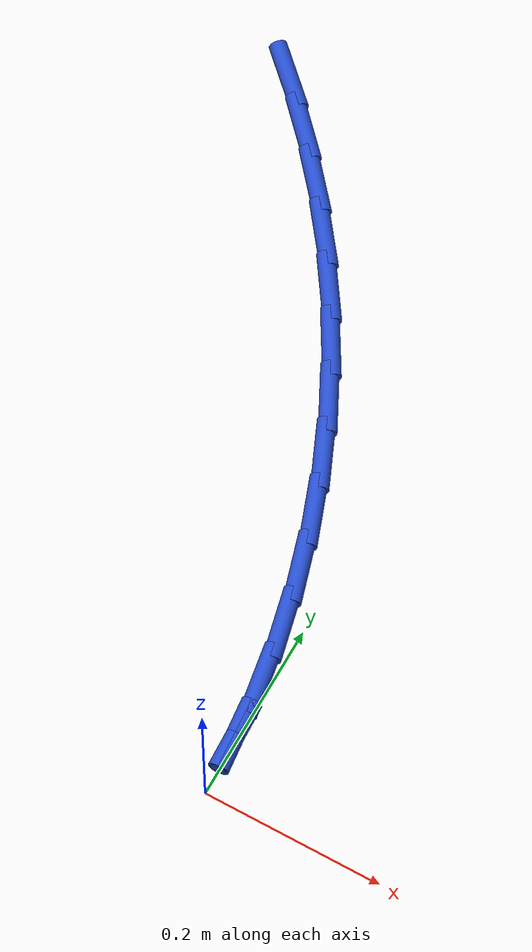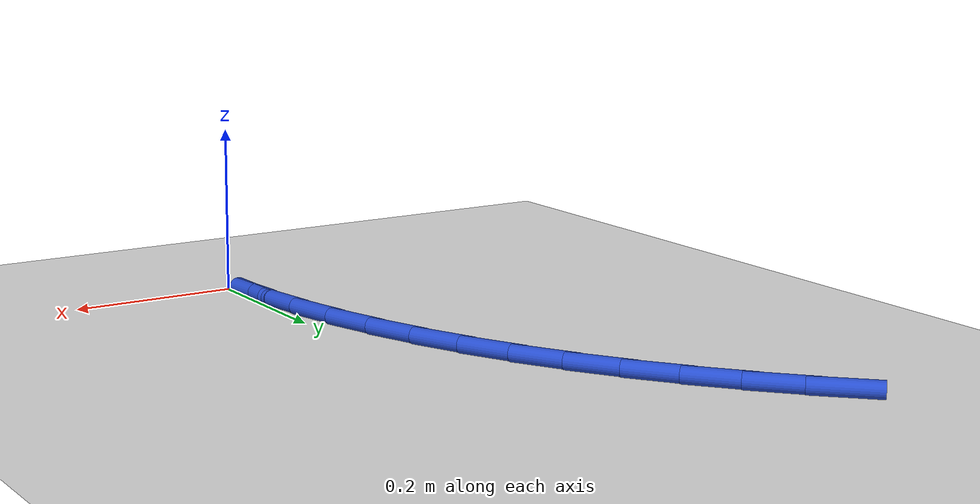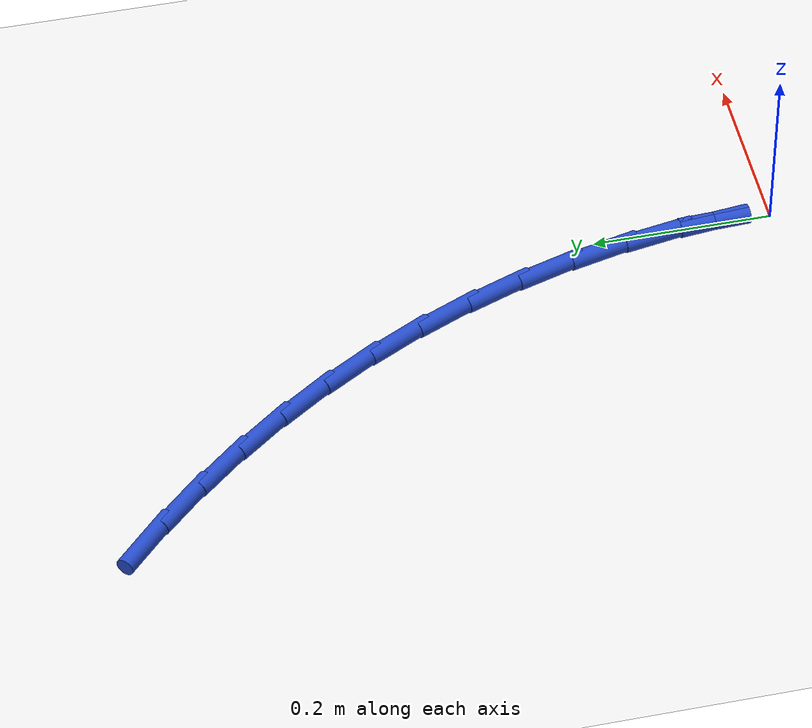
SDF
<sdf version="1.6">
 <world name="default">
  <model name="ground_plane">
   <static>1</static>
   <link name="link">
    <collision name="collision">
     <geometry><plane><normal>0 0 1</normal><size>100 100</size></plane></geometry>
     <surface><friction><ode><mu>100</mu><mu2>50</mu2></ode></friction></surface>
    </collision>
    <visual name="visual">
     <cast_shadows>0</cast_shadows>
     <geometry><plane><normal>0 0 1</normal><size>100 100</size></plane></geometry>
     <material>
      <script><uri>file://media/materials/scripts/gazebo.material</uri><name>Gazebo/WhiteGlow</name></script>
     </material>
    </visual>
   </link>
  </model>
  <model name="line">
   <link name="link_1">
    <pose>-0.0026729923848150955 0.06528703037406168 0.01 0 1.57 -1.464377785418233</pose>
    <collision name="collision">
     <geometry><cylinder><radius>0.01</radius><length>0.08</length></cylinder></geometry>
    </collision>
    <visual name="visual">
     <material>
      <script><name>Gazebo/Blue</name><uri>file://media/materials/scripts/gazebo.material</uri></script>
     </material>
     <geometry><cylinder><radius>0.01</radius><length>0.08</length></cylinder></geometry>
    </visual>
   </link>
   <link name="link_2">
    <pose>-0.009592291558886511 0.13006107449838636 0.01 0 1.57 -1.4003504104838451</pose>
    <collision name="collision">
     <geometry><cylinder><radius>0.01</radius><length>0.08</length></cylinder></geometry>
    </collision>
    <visual name="visual">
     <material>
      <script><name>Gazebo/Blue</name><uri>file://media/materials/scripts/gazebo.material</uri></script>
     </material>
     <geometry><cylinder><radius>0.01</radius><length>0.08</length></cylinder></geometry>
    </visual>
   </link>
   <link name="link_3">
    <pose>-0.020614244890213494 0.19409904249288296 0.01 0 1.57 -1.3376204371227727</pose>
    <collision name="collision">
     <geometry><cylinder><radius>0.01</radius><length>0.08</length></cylinder></geometry>
    </collision>
    <visual name="visual">
     <material>
      <script><name>Gazebo/Blue</name><uri>file://media/materials/scripts/gazebo.material</uri></script>
     </material>
     <geometry><cylinder><radius>0.01</radius><length>0.08</length></cylinder></geometry>
    </visual>
   </link>
   <link name="link_4">
    <pose>-0.03559519974679538 0.2571778444774607 0.01 0 1.57 -1.2759733134528393</pose>
    <collision name="collision">
     <geometry><cylinder><radius>0.01</radius><length>0.08</length></cylinder></geometry>
    </collision>
    <visual name="visual">
     <material>
      <script><name>Gazebo/Blue</name><uri>file://media/materials/scripts/gazebo.material</uri></script>
     </material>
     <geometry><cylinder><radius>0.01</radius><length>0.08</length></cylinder></geometry>
    </visual>
   </link>
   <link name="link_5">
    <pose>-0.05439150349663151 0.31907439057202863 0.01 0 1.57 -1.2151627684335091</pose>
    <collision name="collision">
     <geometry><cylinder><radius>0.01</radius><length>0.08</length></cylinder></geometry>
    </collision>
    <visual name="visual">
     <material>
      <script><name>Gazebo/Blue</name><uri>file://media/materials/scripts/gazebo.material</uri></script>
     </material>
     <geometry><cylinder><radius>0.01</radius><length>0.08</length></cylinder></geometry>
    </visual>
   </link>
   <link name="link_6">
    <pose>-0.07685950350772108 0.3795655908964955 0.01 0 1.57 -1.1549178203636168</pose>
    <collision name="collision">
     <geometry><cylinder><radius>0.01</radius><length>0.08</length></cylinder></geometry>
    </collision>
    <visual name="visual">
     <material>
      <script><name>Gazebo/Blue</name><uri>file://media/materials/scripts/gazebo.material</uri></script>
     </material>
     <geometry><cylinder><radius>0.01</radius><length>0.08</length></cylinder></geometry>
    </visual>
   </link>
   <link name="link_7">
    <pose>-0.10285554714806347 0.4384283555707706 0.01 0 1.57 -1.0949485240399865</pose>
    <collision name="collision">
     <geometry><cylinder><radius>0.01</radius><length>0.08</length></cylinder></geometry>
    </collision>
    <visual name="visual">
     <material>
      <script><name>Gazebo/Blue</name><uri>file://media/materials/scripts/gazebo.material</uri></script>
     </material>
     <geometry><cylinder><radius>0.01</radius><length>0.08</length></cylinder></geometry>
    </visual>
   </link>
   <link name="link_8">
    <pose>-0.132235981785658 0.4954395947147632 0.01 0 1.57 -1.0349535537171897</pose>
    <collision name="collision">
     <geometry><cylinder><radius>0.01</radius><length>0.08</length></cylinder></geometry>
    </collision>
    <visual name="visual">
     <material>
      <script><name>Gazebo/Blue</name><uri>file://media/materials/scripts/gazebo.material</uri></script>
     </material>
     <geometry><cylinder><radius>0.01</radius><length>0.08</length></cylinder></geometry>
    </visual>
   </link>
   <link name="link_9">
    <pose>-0.16485711500180156 0.5503765041496294 0.01 0 1.57 -0.9754605038029999</pose>
    <collision name="collision">
     <geometry><cylinder><radius>0.01</radius><length>0.08</length></cylinder></geometry>
    </collision>
    <visual name="visual">
     <material>
      <script><name>Gazebo/Blue</name><uri>file://media/materials/scripts/gazebo.material</uri></script>
     </material>
     <geometry><cylinder><radius>0.01</radius><length>0.08</length></cylinder></geometry>
    </visual>
   </link>
   <link name="link_10">
    <pose>-0.2005642333908754 0.6030954194472974 0.01 0 1.57 -0.9184351753830534</pose>
    <collision name="collision">
     <geometry><cylinder><radius>0.01</radius><length>0.08</length></cylinder></geometry>
    </collision>
    <visual name="visual">
     <material>
      <script><name>Gazebo/Blue</name><uri>file://media/materials/scripts/gazebo.material</uri></script>
     </material>
     <geometry><cylinder><radius>0.01</radius><length>0.08</length></cylinder></geometry>
    </visual>
   </link>
   <link name="link_11">
    <pose>-0.23917662340041382 0.65363937861907 0.01 0 1.57 -0.8643866570656559</pose>
    <collision name="collision">
     <geometry><cylinder><radius>0.01</radius><length>0.08</length></cylinder></geometry>
    </collision>
    <visual name="visual">
     <material>
      <script><name>Gazebo/Blue</name><uri>file://media/materials/scripts/gazebo.material</uri></script>
     </material>
     <geometry><cylinder><radius>0.01</radius><length>0.08</length></cylinder></geometry>
    </visual>
   </link>
   <link name="link_12">
    <pose>-0.2805098238992504 0.7020783303736908 0.01 0 1.57 -0.8134648639158817</pose>
    <collision name="collision">
     <geometry><cylinder><radius>0.01</radius><length>0.08</length></cylinder></geometry>
    </collision>
    <visual name="visual">
     <material>
      <script><name>Gazebo/Blue</name><uri>file://media/materials/scripts/gazebo.material</uri></script>
     </material>
     <geometry><cylinder><radius>0.01</radius><length>0.08</length></cylinder></geometry>
    </visual>
   </link>
   <link name="link_13">
    <pose>-0.3243793737562187 0.7484822234199036 0.01 0 1.57 -0.7657376626521363</pose>
    <collision name="collision">
     <geometry><cylinder><radius>0.01</radius><length>0.08</length></cylinder></geometry>
    </collision>
    <visual name="visual">
     <material>
      <script><name>Gazebo/Blue</name><uri>file://media/materials/scripts/gazebo.material</uri></script>
     </material>
     <geometry><cylinder><radius>0.01</radius><length>0.08</length></cylinder></geometry>
    </visual>
   </link>
   <link name="link_111">
    <pose>-0.0027079710786336204 0.06525416162444782 0.01 0 1.57 -1.5293212989580964</pose>
    <collision name="collision">
     <geometry><cylinder><radius>0.01</radius><length>0.08</length></cylinder></geometry>
    </collision>
    <visual name="visual">
     <material>
      <script><name>Gazebo/Blue</name><uri>file://media/materials/scripts/gazebo.material</uri></script>
     </material>
     <geometry><cylinder><radius>0.01</radius><length>0.08</length></cylinder></geometry>
    </visual>
   </link>
  </model>
 </world>
</sdf>
